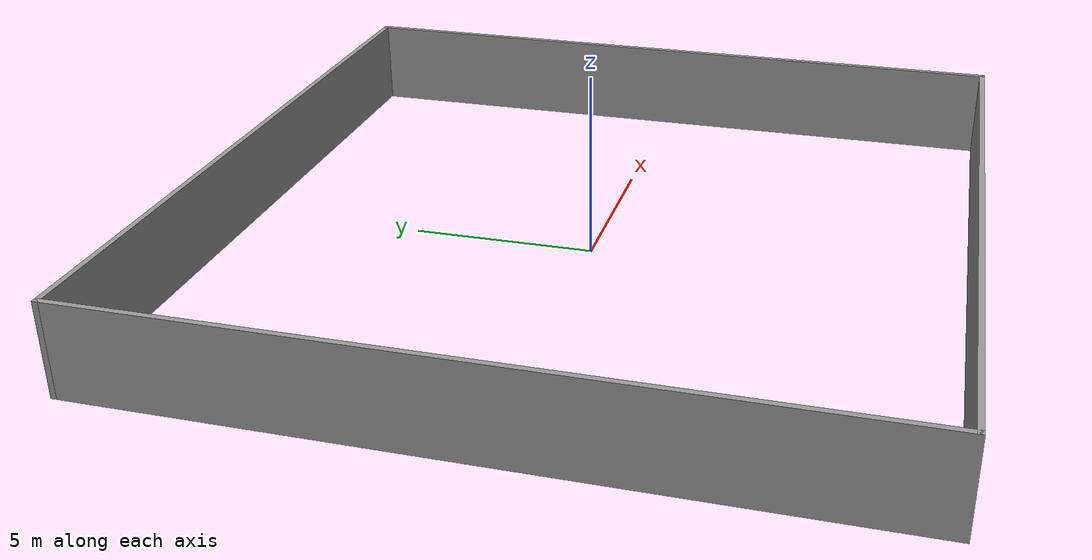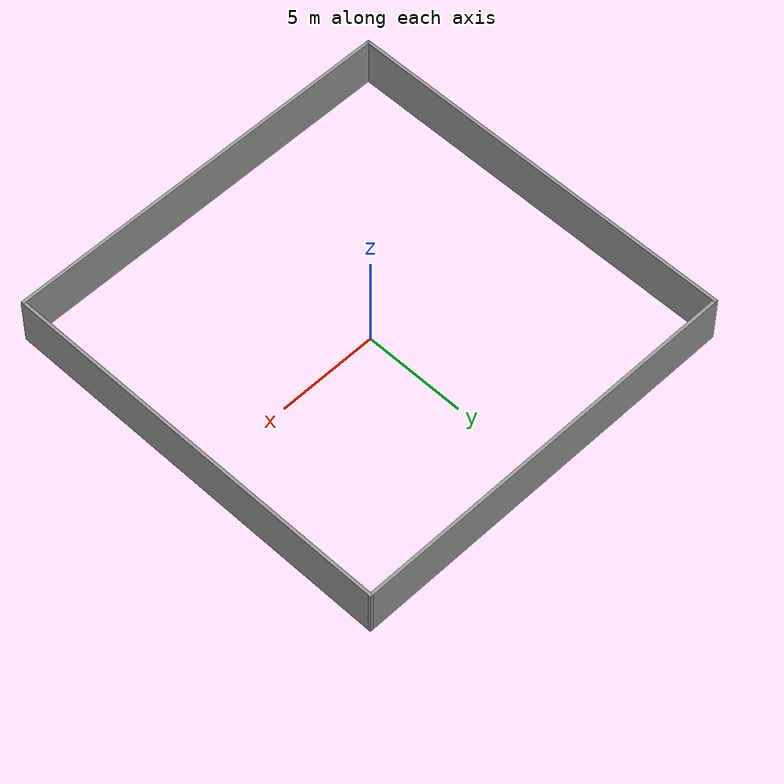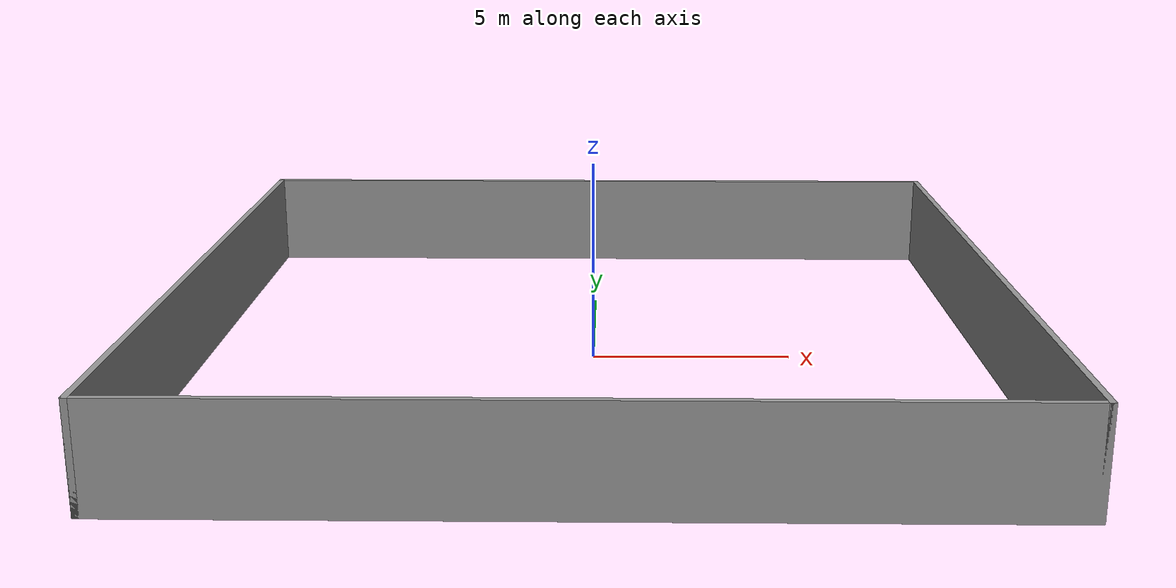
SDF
<?xml version='1.0'?>
<sdf version='1.6'>
  <model name='enclosing_walls'>
    <pose frame=''>0.000991 -0.077957 0 0 -0 0</pose>
    <link name='Wall_129'>
      <collision name='Wall_129_Collision'>
        <geometry>
          <box>
            <size>20 0.15 2.5</size>
          </box>
        </geometry>
        <pose frame=''>0 0 1.25 0 -0 0</pose>
      </collision>
      <visual name='Wall_129_Visual'>
        <pose frame=''>0 0 1.25 0 -0 0</pose>
        <geometry>
          <box>
            <size>20 0.15 2.5</size>
          </box>
        </geometry>
        <material>
          <script>
            <uri>file://media/materials/scripts/gazebo.material</uri>
            <name>Gazebo/Grey</name>
          </script>
          <ambient>1 1 1 1</ambient>
        </material>
        <meta>
          <layer>0</layer>
        </meta>
      </visual>
      <pose frame=''>-0 -9.925 0 0 -0 0</pose>
    </link>
    <link name='Wall_131'>
      <collision name='Wall_131_Collision'>
        <geometry>
          <box>
            <size>20 0.15 2.5</size>
          </box>
        </geometry>
        <pose frame=''>0 0 1.25 0 -0 0</pose>
      </collision>
      <visual name='Wall_131_Visual'>
        <pose frame=''>0 0 1.25 0 -0 0</pose>
        <geometry>
          <box>
            <size>20 0.15 2.5</size>
          </box>
        </geometry>
        <material>
          <script>
            <uri>file://media/materials/scripts/gazebo.material</uri>
            <name>Gazebo/Grey</name>
          </script>
          <ambient>1 1 1 1</ambient>
        </material>
        <meta>
          <layer>0</layer>
        </meta>
      </visual>
      <pose frame=''>9.925 -0 0 0 -0 1.5708</pose>
    </link>
    <link name='Wall_133'>
      <collision name='Wall_133_Collision'>
        <geometry>
          <box>
            <size>20 0.15 2.5</size>
          </box>
        </geometry>
        <pose frame=''>0 0 1.25 0 -0 0</pose>
      </collision>
      <visual name='Wall_133_Visual'>
        <pose frame=''>0 0 1.25 0 -0 0</pose>
        <geometry>
          <box>
            <size>20 0.15 2.5</size>
          </box>
        </geometry>
        <material>
          <script>
            <uri>file://media/materials/scripts/gazebo.material</uri>
            <name>Gazebo/Grey</name>
          </script>
          <ambient>1 1 1 1</ambient>
        </material>
        <meta>
          <layer>0</layer>
        </meta>
      </visual>
      <pose frame=''>-0 9.925 0 0 -0 3.14159</pose>
    </link>
    <link name='Wall_134'>
      <collision name='Wall_134_Collision'>
        <geometry>
          <box>
            <size>20 0.15 2.5</size>
          </box>
        </geometry>
        <pose frame=''>0 0 1.25 0 -0 0</pose>
      </collision>
      <visual name='Wall_134_Visual'>
        <pose frame=''>0 0 1.25 0 -0 0</pose>
        <geometry>
          <box>
            <size>20 0.15 2.5</size>
          </box>
        </geometry>
        <material>
          <script>
            <uri>file://media/materials/scripts/gazebo.material</uri>
            <name>Gazebo/Grey</name>
          </script>
          <ambient>1 1 1 1</ambient>
        </material>
        <meta>
          <layer>0</layer>
        </meta>
      </visual>
      <pose frame=''>-9.925 -0 0 0 -0 -1.5708</pose>
    </link>
    <static>1</static>
  </model>
</sdf>
